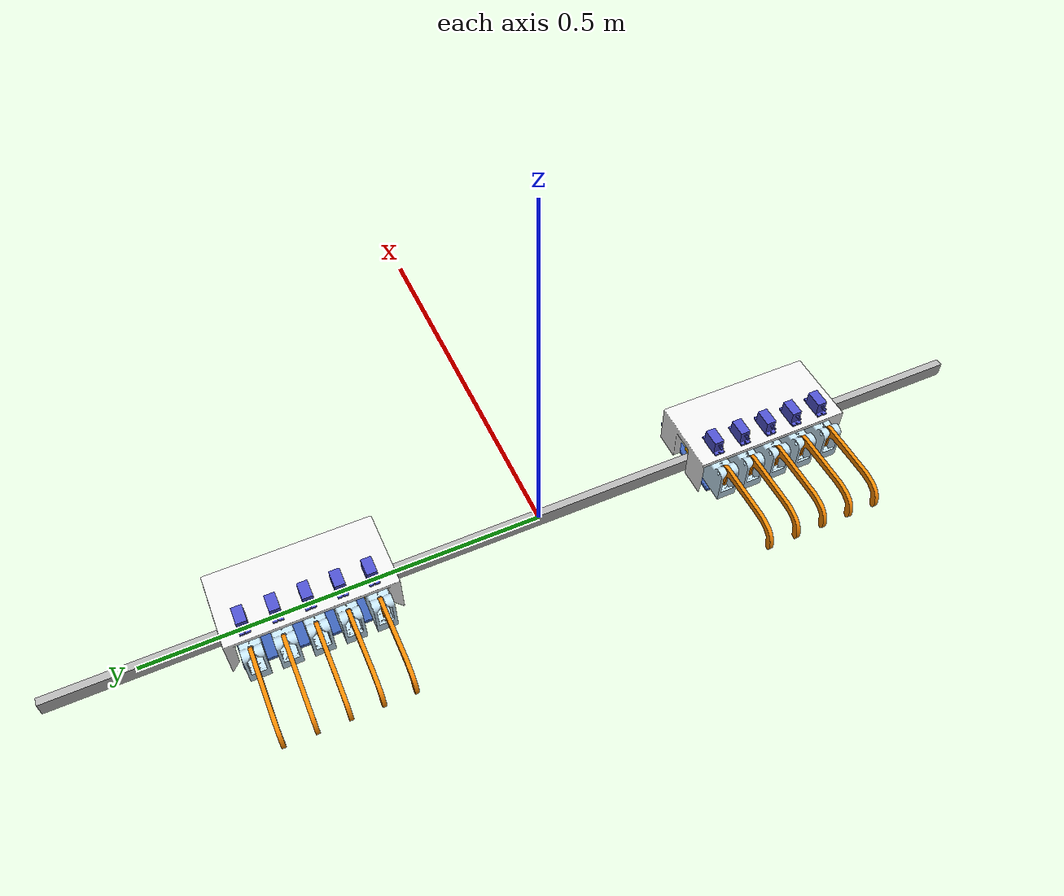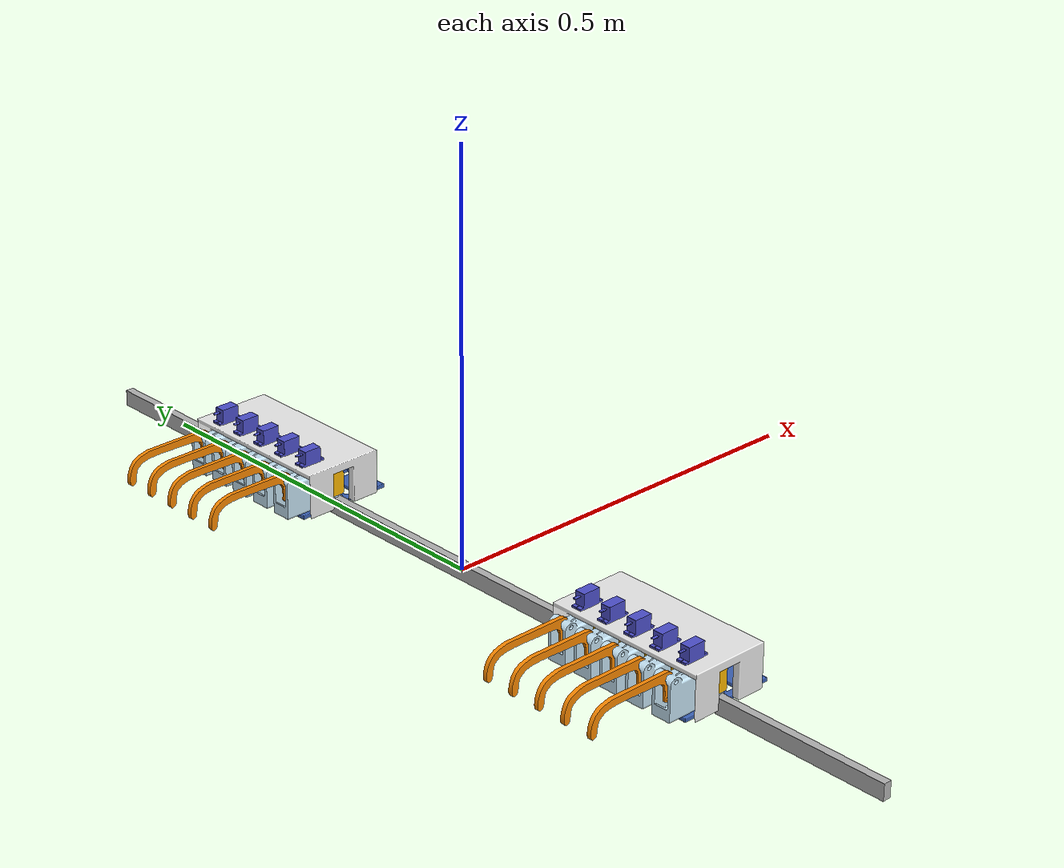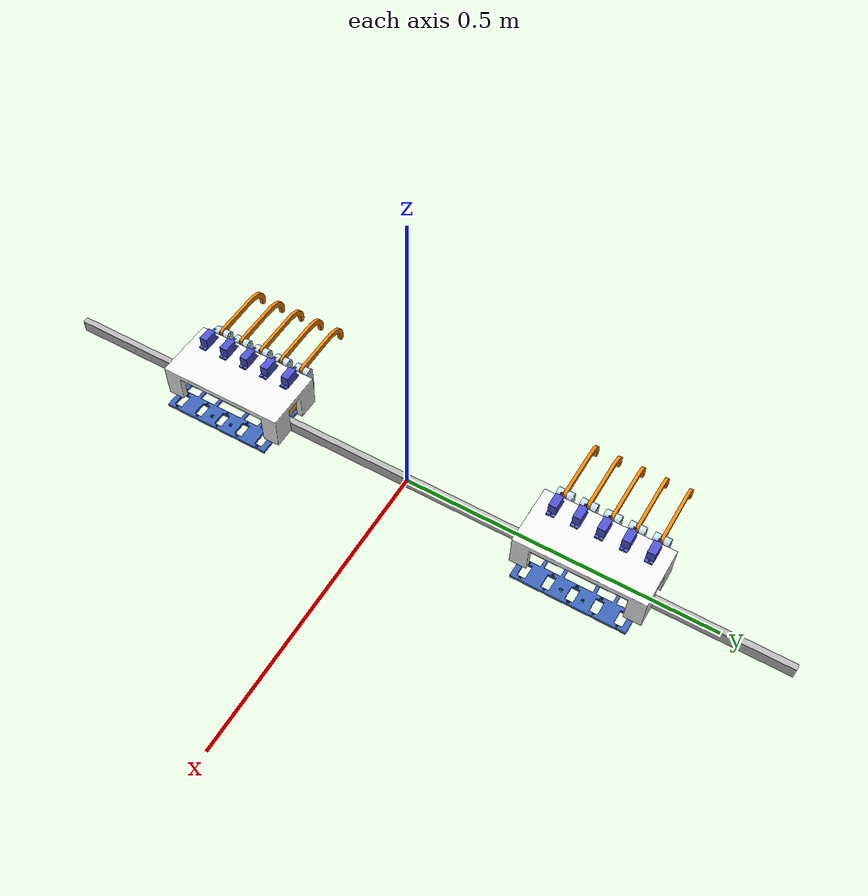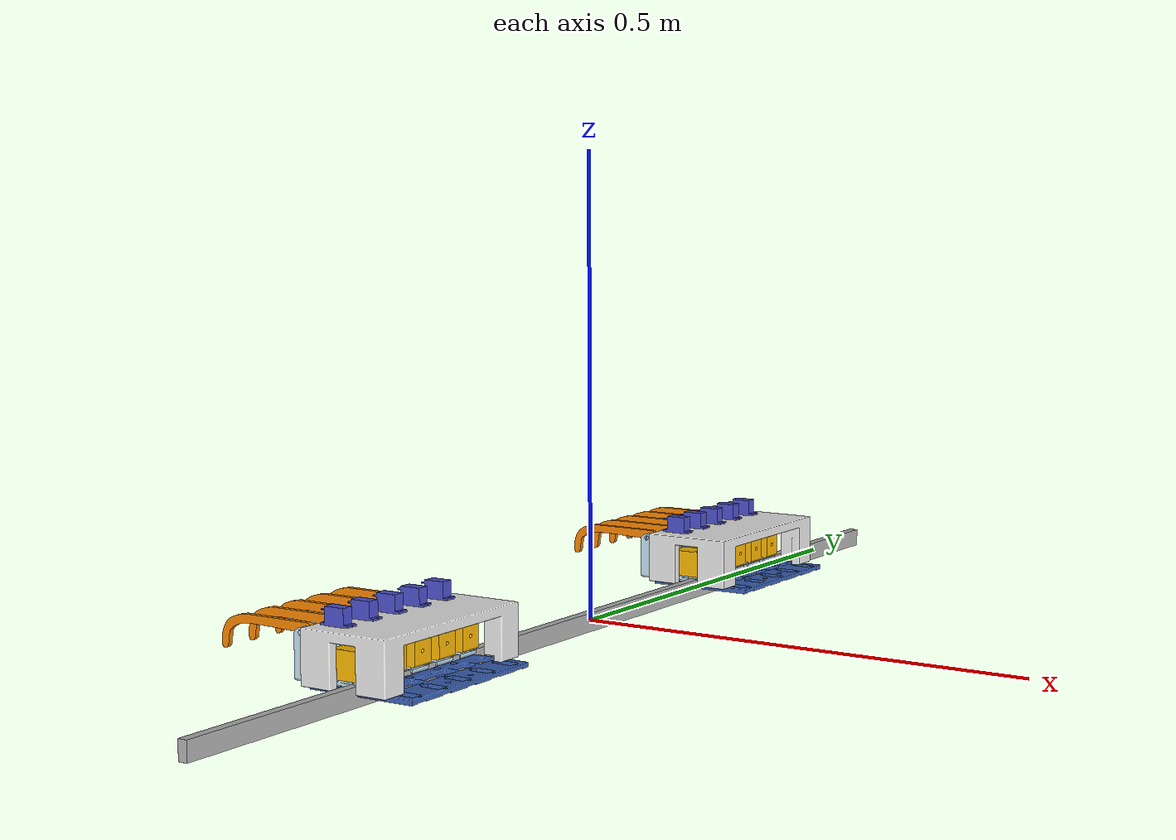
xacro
<?xml version="1.0"?>
<robot name="bothoven" xmlns:xacro="http://www.ros.org/wiki/xacro">

  <xacro:arg name="use_ros2_control" default="true"/>
  <xacro:arg name="sim_mode" default="false"/>
  <xacro:arg name="use_mock_hardware" default="false" />

  <xacro:include filename="$(find description)/description/bothoven_core.xacro"/>
  <xacro:if value="$(arg use_ros2_control)">
      <xacro:include filename="$(find hardware)/urdf/ros2_control.xacro"/>
      <xacro:bothoven_ros2_control use_mock_hardware="$(arg use_mock_hardware)"/>
  </xacro:if>
  <xacro:unless value="$(arg use_ros2_control)">
      <xacro:include filename="$(find description)/description/gazebo_control.xacro" />
  </xacro:unless>
</robot>

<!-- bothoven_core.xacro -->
<robot name="bothoven" xmlns:xacro="http://www.ros.org/wiki/xacro">

  <!-- Import hand macros -->
  <xacro:include filename="$(find description)/description/left_hand.xacro" />
  <xacro:include filename="$(find description)/description/right_hand.xacro" />

  <!-- Rail properties -->
  <xacro:property name="rail_length" value="1.2192" /> <!-- ~4 feet in meters -->
  <xacro:property name="rail_width" value="0.05" />
  <xacro:property name="rail_height" value="0.02" />

  <!-- Define materials at the top level -->
  <material name="servo_material">
    <color rgba="0.302 0.314 0.8 1.0"/>
  </material>

  <!-- Dimensions -->
  <xacro:property name="hand_width" value="0.2032" />
  <xacro:property name="half_length" value="${rail_length / 2}" />
  <xacro:property name="lh_start_point" value="-0.3" />
  <xacro:property name="rh_start_point" value="0.3" />

  <!-- Stepper consts -->
  <xacro:property name="lh_stepper_min" value="${-(half_length + lh_start_point)}" />
  <xacro:property name="lh_stepper_max" value="${half_length - lh_start_point - hand_width}" />
  <xacro:property name="rh_stepper_min" value="${-(half_length + rh_start_point) + hand_width}" />
  <xacro:property name="rh_stepper_max" value="${half_length - rh_start_point}" />

  <!-- Solenoid Joint Properties -->
  <xacro:property name="servo_min" value="-0.087266462599716473902" />
  <xacro:property name="servo_max" value="0.087266462599716473902" />

  <!-- Solenoid Joint Properties -->
  <xacro:property name="solenoid_min" value="0" />
  <xacro:property name="solenoid_max" value="0.52359877559829881566" />

  <material name="finger_mount_plate_material">
    <color rgba="0.231 0.380 0.706 1.0"/>
  </material>

  <material name="servo_mechanism_top_mount_material">
    <color rgba="0.918 0.918 0.918 1.0"/>
  </material>

  <material name="large_solenoid_material">
    <color rgba="0.980 0.714 0.004 1.0"/>
  </material>

  <material name="large_finger_solenoid_material">
    <color rgba="0.769 0.886 0.953 1.0"/>
  </material>

  <material name="finger_arm_large_material">
    <color rgba="0.973 0.529 0.004 1.0"/>
  </material>

  <material name="rail_material">
    <color rgba="0.7 0.7 0.7 1.0"/>
  </material>

  <!-- Base link -->
  <link name="base_link">
    <!-- Optional: Add a visual to represent the rail -->
    <visual>
      <origin xyz="0 0 0" rpy="0 0 0" />
      <geometry>
        <box size="0.01 ${rail_length} ${rail_height}"/>
      </geometry>
      <material name="rail_material"/>
    </visual>
    <collision>
      <origin xyz="0 0 0" rpy="0 0 0" />
      <geometry>
        <box size="0.01 ${rail_length} ${rail_height}"/>
      </geometry>
    </collision>
    <inertial>
      <mass value="1.0" />
      <inertia ixx="0.1" ixy="0.0" ixz="0.0" iyy="0.1" iyz="0.0" izz="0.1" />
    </inertial>
  </link>

  <!-- Create left hand -->
  <xacro:left_hand parent_link="base_link" rail_origin="0" rail_length="${rail_length}" />

  <!-- Create right hand -->
  <xacro:right_hand parent_link="base_link" rail_origin="0" rail_length="${rail_length}" />

</robot>

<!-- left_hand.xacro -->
<robot xmlns:xacro="http://www.ros.org/wiki/xacro">

  <!-- Import finger macro -->
  <xacro:include filename="$(find description)/description/finger.xacro" />

  <!-- Left Hand Macro -->
  <xacro:macro name="left_hand" params="parent_link rail_origin rail_length">
    <!-- Define the half-width of the hand -->
    <xacro:property name="hand_width" value="0.2032" />

    <!-- Calculate travel limits -->
    <xacro:property name="half_length" value="${rail_length / 2}" />
    <xacro:property name="start_point" value="-0.3" />

    <!-- Stepper joint that moves the hand left/right -->
    <joint name="lh_stepper" type="prismatic">
      <origin xyz="0 ${start_point} 0" rpy="0 0 ${pi}" />
      <parent link="${parent_link}"/>
      <child link="lh_mount_plate" />
      <axis xyz="0 -1 0"/>
      <!-- Limit the travel based on the rail length, accounting for hand width -->
      <limit effort="100" velocity="1.0" lower="${-(half_length + start_point)}" upper="${half_length - start_point - hand_width}"/>
    </joint>

    <!-- Mount plate link -->
    <link name="lh_mount_plate">
      <visual>
        <origin xyz="0.045938244354197944885 -0.043846468705386110187 0.078200000000000005618" rpy="3.141592653589793116 -0 3.141592653589793116" />
        <geometry>
          <mesh filename="package://description/meshes/servo.stl"/>
        </geometry>
        <material name="servo_material"/>
      </visual>
      <visual>
        <origin xyz="0.045938244354197944885 -0.0063464687053861098404 0.078200000000000005618" rpy="3.141592653589793116 -0 3.141592653589793116" />
        <geometry>
          <mesh filename="package://description/meshes/servo.stl"/>
        </geometry>
        <material name="servo_material"/>
      </visual>
      <visual>
        <origin xyz="0.0023499287608851338049 0.033803517640591265736 -0.021799999999999989525" rpy="1.9958838398273146999e-16 -6.5938365254384542654e-32 0" />
        <geometry>
          <mesh filename="package://description/meshes/finger_mount_plate.stl"/>
        </geometry>
        <material name="finger_mount_plate_material"/>
      </visual>
      <visual>
        <origin xyz="0.045938244354197951824 0.068653531294613892588 0.078200000000000005618" rpy="3.141592653589793116 -0 3.141592653589793116" />
        <geometry>
          <mesh filename="package://description/meshes/servo.stl"/>
        </geometry>
        <material name="servo_material"/>
      </visual>
      <visual>
        <origin xyz="0.045938244354197944885 0.031153531294613880098 0.078200000000000005618" rpy="3.141592653589793116 -0 3.141592653589793116" />
        <geometry>
          <mesh filename="package://description/meshes/servo.stl"/>
        </geometry>
        <material name="servo_material"/>
      </visual>
      <visual>
        <origin xyz="0.002343270376630176427 3.5176405913106556511e-06 0.060000000000000004718" rpy="3.141592653589793116 -0 0" />
        <geometry>
          <mesh filename="package://description/meshes/servo_mechanism_top_mount.stl"/>
        </geometry>
        <material name="servo_mechanism_top_mount_material"/>
      </visual>
      <visual>
        <origin xyz="0.045938244354197944885 -0.081346468705386101861 0.078200000000000005618" rpy="3.141592653589793116 -0 3.141592653589793116" />
        <geometry>
          <mesh filename="package://description/meshes/servo.stl"/>
        </geometry>
        <material name="servo_material"/>
      </visual>
      <inertial>
        <origin xyz="-0.0061380588689649677459 3.5176405912781151864e-06 0.0021762323764684364524" rpy="0 0 0"/>
        <mass value="0.1425418914513462143" />
        <inertia ixx="0.00049040499142920430681" ixy="-4.2521531645534643096e-08" ixz="3.8022632172476792943e-07" iyy="0.00017998199019841947194" iyz="-9.7638013247875626937e-20" izz="0.00066917886277955795742" />
      </inertial>
    </link>

    <!-- Create 5 fingers using the finger macro -->
    <xacro:finger prefix="lh" parent_link="lh_mount_plate" finger_num="1"
                  xyz_mount="0.035323819514354745652 -0.074996482359408825347 0.0050000000000000044409"
                  rpy_mount="3.141592653589793116 -0 -1.570796326794896558" />

    <xacro:finger prefix="lh" parent_link="lh_mount_plate" finger_num="2"
                  xyz_mount="0.035323819514354745652 -0.037496482359408805918 0.0050000000000000087777"
                  rpy_mount="3.141592653589793116 -0 -1.570796326794896558" />

    <xacro:finger prefix="lh" parent_link="lh_mount_plate" finger_num="3"
                  xyz_mount="0.035323819514354745652 3.5176405912273889243e-06 0.0050000000000000044409"
                  rpy_mount="3.141592653589793116 -0 -1.570796326794896558" />

    <xacro:finger prefix="lh" parent_link="lh_mount_plate" finger_num="4"
                  xyz_mount="0.035323819514354745652 0.037503517640591260696 0.0050000000000000044409"
                  rpy_mount="3.141592653589793116 -0 -1.570796326794896558" />

    <xacro:finger prefix="lh" parent_link="lh_mount_plate" finger_num="5"
                  xyz_mount="0.035323819514354717897 0.075003517640591349513 0.0050000000000000044409"
                  rpy_mount="3.141592653589793116 -0 -1.570796326794896558" />
  </xacro:macro>

</robot>

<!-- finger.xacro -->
<robot xmlns:xacro="http://www.ros.org/wiki/xacro">

  <!-- Finger Macro -->
  <xacro:macro name="finger" params="prefix parent_link finger_num xyz_mount rpy_mount">
    <!-- Solenoid Link -->
    <link name="${prefix}_solenoid_${finger_num}">
      <visual>
        <origin xyz="0 0.027359073967098360841 -0.036000000000000004219" rpy="0 0 0" />
        <geometry>
          <mesh filename="package://description/meshes/large_solenoid.stl"/>
        </geometry>
        <material name="large_solenoid_material"/>
      </visual>
      <visual>
        <origin xyz="1.3877787807814456755e-17 0.0074929958267665672245 0" rpy="3.141592653589793116 0 0" />
        <geometry>
          <mesh filename="package://description/meshes/large_finger_solenoid.stl"/>
        </geometry>
        <material name="large_finger_solenoid_material"/>
      </visual>
      <inertial>
        <origin xyz="1.7276994838517517774e-08 0.023549138202856669672 -0.021326177734694938548" rpy="0 0 0"/>
        <mass value="0.55338609888308010198" />
        <inertia ixx="0.00016287530117454286681" ixy="4.5851672331546051194e-10" ixz="-9.7499035282877420938e-11" iyy="7.4613511550565022159e-05" iyz="-1.8189117257819838714e-07" izz="0.00014685197355774080646" />
      </inertial>
    </link>

    <!-- Finger Arm Link -->
    <link name="${prefix}_arm_${finger_num}">
      <visual>
        <origin xyz="0.063368257669539254651 -5.4787295081876186131e-05 -0.0050000000000000044409" rpy="0 0 0" />
        <geometry>
          <mesh filename="package://description/meshes/finger_arm_large.stl"/>
        </geometry>
        <material name="finger_arm_large_material"/>
      </visual>
      <inertial>
        <origin xyz="0.051327194737765820254 -0.0021301611848530584148 -0.0025000197144712252642" rpy="0 0 0"/>
        <mass value="0.007972723597301041229" />
        <inertia ixx="5.9298578433162395778e-07" ixy="7.2370069362940225858e-07" ixz="-1.3145273744757145031e-11" iyy="1.1055709395186790427e-05" iyz="-3.8580036837076919589e-12" izz="1.1616703844229351174e-05" />
      </inertial>
    </link>

    <!-- Servo Joint (renamed from Finger_Mount) -->
    <joint name="${prefix}_servo_${finger_num}" type="revolute">
      <origin xyz="${xyz_mount}" rpy="${rpy_mount}" />
      <parent link="${parent_link}" />
      <child link="${prefix}_solenoid_${finger_num}" />
      <axis xyz="0 0 1"/>
      <limit effort="1" velocity="20" lower="${servo_min}" upper="${servo_max}"/>
    </joint>

    <!-- Solenoid Joint (renamed from Finger_Arm) -->
    <joint name="${prefix}_solenoid_${finger_num}" type="revolute">
      <origin xyz="0.003 -0.029897960988655505887 -0.046304046845760712947" rpy="-1.570796326794896558 0 -1.5707963267948970021" />
      <parent link="${prefix}_solenoid_${finger_num}" />
      <child link="${prefix}_arm_${finger_num}" />
      <axis xyz="0 0 -1"/>
      <limit effort="1" velocity="20" lower="${solenoid_min}" upper="${solenoid_max}"/>
    </joint>
  </xacro:macro>

</robot>

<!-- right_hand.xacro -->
<robot xmlns:xacro="http://www.ros.org/wiki/xacro">

  <!-- Import finger macro -->
  <xacro:include filename="$(find description)/description/finger.xacro" />

  <!-- Right Hand Macro - Using the dimensions from the paste.txt file -->
  <xacro:macro name="right_hand" params="parent_link rail_origin rail_length">
    <!-- Define the half-width of the hand -->
    <xacro:property name="hand_width" value="0.2032" />

    <!-- Calculate travel limits -->
    <xacro:property name="half_length" value="${rail_length / 2}" />
    <xacro:property name="start_point" value="0.3" />

    <!-- Stepper joint that moves the hand left/right -->
    <joint name="rh_stepper" type="prismatic">
      <origin xyz="0 ${start_point} 0" rpy="0 0 ${pi}" />
      <parent link="${parent_link}"/>
      <child link="rh_mount_plate" />
      <axis xyz="0 -1 0"/>
      <!-- Limit the travel based on the rail length, accounting for hand width -->
      <limit effort="100" velocity="1.0" lower="${-(half_length + start_point) + hand_width}" upper="${half_length - start_point}"/>
    </joint>

    <!-- Mount plate link -->
    <link name="rh_mount_plate">
      <visual>
        <origin xyz="0.045938244354197944885 -0.043846468705386110187 0.078200000000000005618" rpy="3.141592653589793116 -0 3.141592653589793116" />
        <geometry>
          <mesh filename="package://description/description/meshes/servo.stl"/>
        </geometry>
        <material name="servo_material"/>
      </visual>
      <visual>
        <origin xyz="0.045938244354197944885 -0.0063464687053861098404 0.078200000000000005618" rpy="3.141592653589793116 -0 3.141592653589793116" />
        <geometry>
          <mesh filename="package://description/description/meshes/servo.stl"/>
        </geometry>
        <material name="servo_material"/>
      </visual>
      <visual>
        <origin xyz="0.0023499287608851338049 0.033803517640591265736 -0.021799999999999989525" rpy="1.9958838398273146999e-16 -6.5938365254384542654e-32 0" />
        <geometry>
          <mesh filename="package://description/description/meshes/finger_mount_plate.stl"/>
        </geometry>
        <material name="finger_mount_plate_material"/>
      </visual>
      <visual>
        <origin xyz="0.045938244354197951824 0.068653531294613892588 0.078200000000000005618" rpy="3.141592653589793116 -0 3.141592653589793116" />
        <geometry>
          <mesh filename="package://description/description/meshes/servo.stl"/>
        </geometry>
        <material name="servo_material"/>
      </visual>
      <visual>
        <origin xyz="0.045938244354197944885 0.031153531294613880098 0.078200000000000005618" rpy="3.141592653589793116 -0 3.141592653589793116" />
        <geometry>
          <mesh filename="package://description/description/meshes/servo.stl"/>
        </geometry>
        <material name="servo_material"/>
      </visual>
      <visual>
        <origin xyz="0.002343270376630176427 3.5176405913106556511e-06 0.060000000000000004718" rpy="3.141592653589793116 -0 0" />
        <geometry>
          <mesh filename="package://description/description/meshes/servo_mechanism_top_mount.stl"/>
        </geometry>
        <material name="servo_mechanism_top_mount_material"/>
      </visual>
      <visual>
        <origin xyz="0.045938244354197944885 -0.081346468705386101861 0.078200000000000005618" rpy="3.141592653589793116 -0 3.141592653589793116" />
        <geometry>
          <mesh filename="package://description/description/meshes/servo.stl"/>
        </geometry>
        <material name="servo_material"/>
      </visual>
      <inertial>
        <origin xyz="-0.0061380588689649677459 3.5176405912781151864e-06 0.0021762323764684364524" rpy="0 0 0"/>
        <mass value="0.1425418914513462143" />
        <inertia ixx="0.00049040499142920430681" ixy="-4.2521531645534643096e-08" ixz="3.8022632172476792943e-07" iyy="0.00017998199019841947194" iyz="-9.7638013247875626937e-20" izz="0.00066917886277955795742" />
      </inertial>
    </link>

    <!-- Create 5 fingers using the finger macro with the order from the pasted file -->
    <xacro:finger prefix="rh" parent_link="rh_mount_plate" finger_num="1"
                  xyz_mount="0.035323819514354752591 0.075003517640591335636 0.0050000000000000044409"
                  rpy_mount="3.141592653589793116 -0 -1.570796326794896558" />

    <xacro:finger prefix="rh" parent_link="rh_mount_plate" finger_num="2"
                  xyz_mount="0.035323819514354745652 0.037503517640591260696 0.0050000000000000044409"
                  rpy_mount="3.141592653589793116 -0 -1.570796326794896558" />

    <xacro:finger prefix="rh" parent_link="rh_mount_plate" finger_num="3"
                  xyz_mount="0.035323819514354745652 3.5176405912273889243e-06 0.0050000000000000044409"
                  rpy_mount="3.141592653589793116 -0 -1.570796326794896558" />

    <xacro:finger prefix="rh" parent_link="rh_mount_plate" finger_num="4"
                  xyz_mount="0.035323819514354745652 -0.037496482359408805918 0.0050000000000000044409"
                  rpy_mount="3.141592653589793116 -0 -1.570796326794896558" />

    <xacro:finger prefix="rh" parent_link="rh_mount_plate" finger_num="5"
                  xyz_mount="0.035323819514354745652 -0.074996482359408839224 0.0050000000000000044409"
                  rpy_mount="3.141592653589793116 -0 -1.570796326794896558" />
  </xacro:macro>

</robot>
